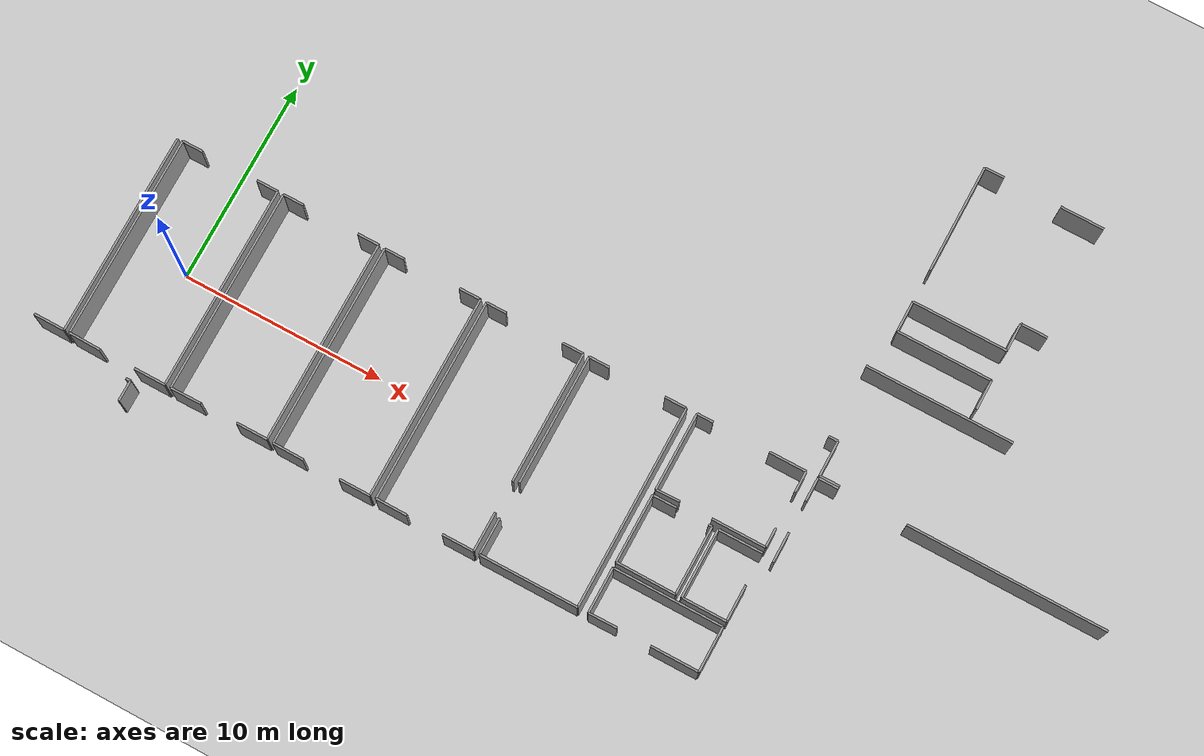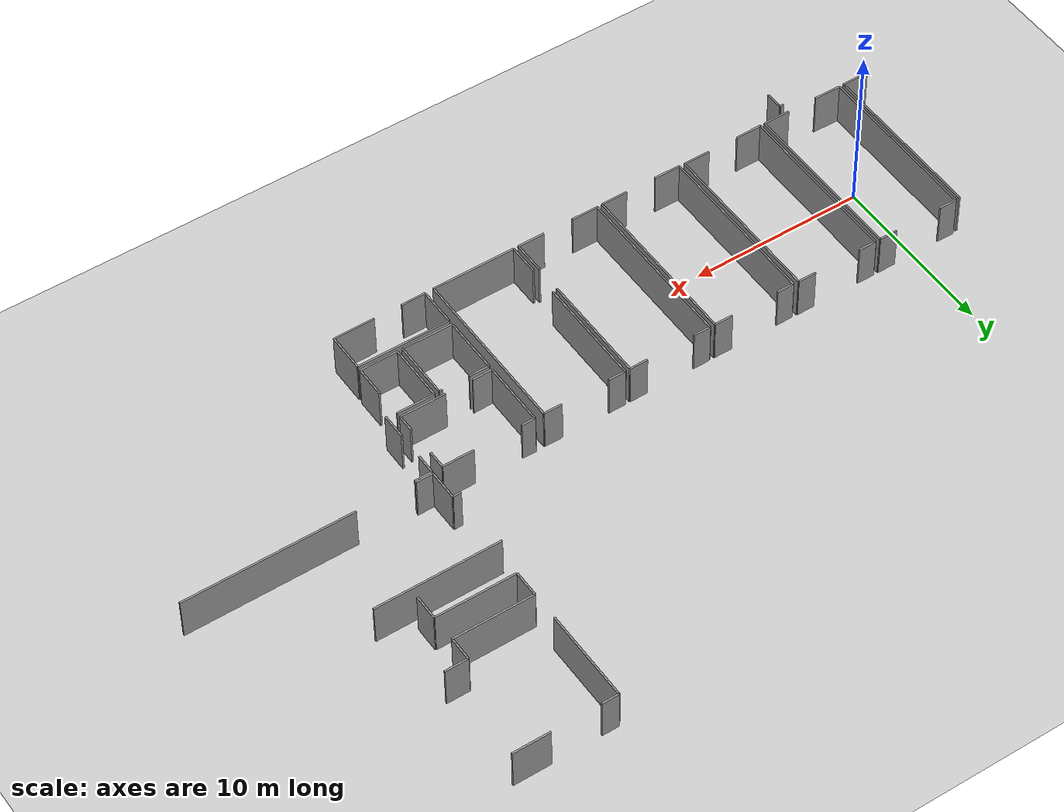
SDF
<sdf version="1.6">
 <world name="default">
  <model name="ground_plane">
   <static>1</static>
   <link name="link">
    <collision name="collision">
     <geometry><plane><normal>0 0 1</normal><size>100 100</size></plane></geometry>
     <surface><friction><ode><mu>100</mu><mu2>50</mu2></ode></friction></surface>
    </collision>
    <visual name="visual">
     <cast_shadows>0</cast_shadows>
     <geometry><plane><normal>0 0 1</normal><size>100 100</size></plane></geometry>
     <material>
      <script><uri>file://media/materials/scripts/gazebo.material</uri><name>Gazebo/Grey</name></script>
     </material>
    </visual>
   </link>
  </model>
  <model name="50055640">
   <static>1</static>
   <link name="Wall_184">
    <collision name="Wall_184_Collision">
     <geometry><box><size>0.228437991776 0.1 2.5</size></box></geometry>
     <pose>0.114218995888 0 1.25 0 0 0</pose>
    </collision>
    <visual name="Wall_184_Visual">
     <pose>0.114218995888 0 1.25 0 0 0</pose>
     <geometry><box><size>0.228437991776 0.1 2.5</size></box></geometry>
     <material>
      <script><uri>file://media/materials/scripts/gazebo.material</uri><name>Gazebo/Grey</name></script>
      <ambient>1 1 1 1</ambient>
     </material>
    </visual>
    <pose>70.9355804863 -26.5519061881 0 0 0 0.0</pose>
   </link>
   <link name="Wall_185">
    <collision name="Wall_185_Collision">
     <geometry><box><size>1.02682877303 0.1 2.5</size></box></geometry>
     <pose>0.513414386517 0 1.25 0 0 0</pose>
    </collision>
    <visual name="Wall_185_Visual">
     <pose>0.513414386517 0 1.25 0 0 0</pose>
     <geometry><box><size>1.02682877303 0.1 2.5</size></box></geometry>
     <material>
      <script><uri>file://media/materials/scripts/gazebo.material</uri><name>Gazebo/Grey</name></script>
      <ambient>1 1 1 1</ambient>
     </material>
    </visual>
    <pose>71.1640184781 -26.5519061881 0 0 0 -1.57079632679</pose>
   </link>
   <link name="Wall_231">
    <collision name="Wall_231_Collision">
     <geometry><box><size>9.96218082136 0.1 2.5</size></box></geometry>
     <pose>4.98109041068 0 1.25 0 0 0</pose>
    </collision>
    <visual name="Wall_231_Visual">
     <pose>4.98109041068 0 1.25 0 0 0</pose>
     <geometry><box><size>9.96218082136 0.1 2.5</size></box></geometry>
     <material>
      <script><uri>file://media/materials/scripts/gazebo.material</uri><name>Gazebo/Grey</name></script>
      <ambient>1 1 1 1</ambient>
     </material>
    </visual>
    <pose>67.4478399919 -16.0047971978 0 0 0 -1.57079632679</pose>
   </link>
   <link name="Wall_232">
    <collision name="Wall_232_Collision">
     <geometry><box><size>1.5417026245 0.1 2.5</size></box></geometry>
     <pose>0.770851312249 0 1.25 0 0 0</pose>
    </collision>
    <visual name="Wall_232_Visual">
     <pose>0.770851312249 0 1.25 0 0 0</pose>
     <geometry><box><size>1.5417026245 0.1 2.5</size></box></geometry>
     <material>
      <script><uri>file://media/materials/scripts/gazebo.material</uri><name>Gazebo/Grey</name></script>
      <ambient>1 1 1 1</ambient>
     </material>
    </visual>
    <pose>67.4478399919 -25.9669780192 0 0 0 3.14159265359</pose>
   </link>
   <link name="Wall_234">
    <collision name="Wall_234_Collision">
     <geometry><box><size>9.9667495812 0.1 2.5</size></box></geometry>
     <pose>4.9833747906 0 1.25 0 0 0</pose>
    </collision>
    <visual name="Wall_234_Visual">
     <pose>4.9833747906 0 1.25 0 0 0</pose>
     <geometry><box><size>9.9667495812 0.1 2.5</size></box></geometry>
     <material>
      <script><uri>file://media/materials/scripts/gazebo.material</uri><name>Gazebo/Grey</name></script>
      <ambient>1 1 1 1</ambient>
     </material>
    </visual>
    <pose>67.7064825626 -25.9598710594 0 0 0 1.57079632679</pose>
   </link>
   <link name="Wall_235">
    <collision name="Wall_235_Collision">
     <geometry><box><size>1.02137164323 0.1 2.5</size></box></geometry>
     <pose>0.510685821615 0 1.25 0 0 0</pose>
    </collision>
    <visual name="Wall_235_Visual">
     <pose>0.510685821615 0 1.25 0 0 0</pose>
     <geometry><box><size>1.02137164323 0.1 2.5</size></box></geometry>
     <material>
      <script><uri>file://media/materials/scripts/gazebo.material</uri><name>Gazebo/Grey</name></script>
      <ambient>1 1 1 1</ambient>
     </material>
    </visual>
    <pose>67.7064825626 -15.9931214782 0 0 0 0.0</pose>
   </link>
   <link name="Wall_236">
    <collision name="Wall_236_Collision">
     <geometry><box><size>1.05931773186 0.1 2.5</size></box></geometry>
     <pose>0.529658865932 0 1.25 0 0 0</pose>
    </collision>
    <visual name="Wall_236_Visual">
     <pose>0.529658865932 0 1.25 0 0 0</pose>
     <geometry><box><size>1.05931773186 0.1 2.5</size></box></geometry>
     <material>
      <script><uri>file://media/materials/scripts/gazebo.material</uri><name>Gazebo/Grey</name></script>
      <ambient>1 1 1 1</ambient>
     </material>
    </visual>
    <pose>71.5163206254 -15.9931214782 0 0 0 0.0</pose>
   </link>
   <link name="Wall_237">
    <collision name="Wall_237_Collision">
     <geometry><box><size>9.99060866034 0.1 2.5</size></box></geometry>
     <pose>4.99530433017 0 1.25 0 0 0</pose>
    </collision>
    <visual name="Wall_237_Visual">
     <pose>4.99530433017 0 1.25 0 0 0</pose>
     <geometry><box><size>9.99060866034 0.1 2.5</size></box></geometry>
     <material>
      <script><uri>file://media/materials/scripts/gazebo.material</uri><name>Gazebo/Grey</name></script>
      <ambient>1 1 1 1</ambient>
     </material>
    </visual>
    <pose>72.5756383573 -15.9931214782 0 0 0 -1.57079632679</pose>
   </link>
   <link name="Wall_238">
    <collision name="Wall_238_Collision">
     <geometry><box><size>1.54233717448 0.1 2.5</size></box></geometry>
     <pose>0.771168587238 0 1.25 0 0 0</pose>
    </collision>
    <visual name="Wall_238_Visual">
     <pose>0.771168587238 0 1.25 0 0 0</pose>
     <geometry><box><size>1.54233717448 0.1 2.5</size></box></geometry>
     <material>
      <script><uri>file://media/materials/scripts/gazebo.material</uri><name>Gazebo/Grey</name></script>
      <ambient>1 1 1 1</ambient>
     </material>
    </visual>
    <pose>72.5756383573 -25.9837301386 0 0 0 3.14159265359</pose>
   </link>
   <link name="Wall_239">
    <collision name="Wall_239_Collision">
     <geometry><box><size>1.5766564998 0.1 2.5</size></box></geometry>
     <pose>0.788328249899 0 1.25 0 0 0</pose>
    </collision>
    <visual name="Wall_239_Visual">
     <pose>0.788328249899 0 1.25 0 0 0</pose>
     <geometry><box><size>1.5766564998 0.1 2.5</size></box></geometry>
     <material>
      <script><uri>file://media/materials/scripts/gazebo.material</uri><name>Gazebo/Grey</name></script>
      <ambient>1 1 1 1</ambient>
     </material>
    </visual>
    <pose>69.2829585258 -25.9837301386 0 0 0 3.12645937005</pose>
   </link>
   <link name="Wall_240">
    <collision name="Wall_240_Collision">
     <geometry><box><size>9.98489771054 0.1 2.5</size></box></geometry>
     <pose>4.99244885527 0 1.25 0 0 0</pose>
    </collision>
    <visual name="Wall_240_Visual">
     <pose>4.99244885527 0 1.25 0 0 0</pose>
     <geometry><box><size>9.98489771054 0.1 2.5</size></box></geometry>
     <material>
      <script><uri>file://media/materials/scripts/gazebo.material</uri><name>Gazebo/Grey</name></script>
      <ambient>1 1 1 1</ambient>
     </material>
    </visual>
    <pose>72.8695619067 -25.9780191888 0 0 0 1.57079632679</pose>
   </link>
   <link name="Wall_241">
    <collision name="Wall_241_Collision">
     <geometry><box><size>1.02099091324 0.1 2.5</size></box></geometry>
     <pose>0.510495456622 0 1.25 0 0 0</pose>
    </collision>
    <visual name="Wall_241_Visual">
     <pose>0.510495456622 0 1.25 0 0 0</pose>
     <geometry><box><size>1.02099091324 0.1 2.5</size></box></geometry>
     <material>
      <script><uri>file://media/materials/scripts/gazebo.material</uri><name>Gazebo/Grey</name></script>
      <ambient>1 1 1 1</ambient>
     </material>
    </visual>
    <pose>72.8695619067 -15.9931214782 0 0 0 0.0</pose>
   </link>
   <link name="Wall_242">
    <collision name="Wall_242_Collision">
     <geometry><box><size>1.05144931215 0.1 2.5</size></box></geometry>
     <pose>0.525724656074 0 1.25 0 0 0</pose>
    </collision>
    <visual name="Wall_242_Visual">
     <pose>0.525724656074 0 1.25 0 0 0</pose>
     <geometry><box><size>1.05144931215 0.1 2.5</size></box></geometry>
     <material>
      <script><uri>file://media/materials/scripts/gazebo.material</uri><name>Gazebo/Grey</name></script>
      <ambient>1 1 1 1</ambient>
     </material>
    </visual>
    <pose>76.6684857099 -15.9931214782 0 0 0 0.0</pose>
   </link>
   <link name="Wall_243">
    <collision name="Wall_243_Collision">
     <geometry><box><size>9.96598812122 0.1 2.5</size></box></geometry>
     <pose>4.98299406061 0 1.25 0 0 0</pose>
    </collision>
    <visual name="Wall_243_Visual">
     <pose>4.98299406061 0 1.25 0 0 0</pose>
     <geometry><box><size>9.96598812122 0.1 2.5</size></box></geometry>
     <material>
      <script><uri>file://media/materials/scripts/gazebo.material</uri><name>Gazebo/Grey</name></script>
      <ambient>1 1 1 1</ambient>
     </material>
    </visual>
    <pose>77.7199350221 -15.9931214782 0 0 0 -1.57079632679</pose>
   </link>
   <link name="Wall_244">
    <collision name="Wall_244_Collision">
     <geometry><box><size>1.53789532464 0.1 2.5</size></box></geometry>
     <pose>0.768947662318 0 1.25 0 0 0</pose>
    </collision>
    <visual name="Wall_244_Visual">
     <pose>0.768947662318 0 1.25 0 0 0</pose>
     <geometry><box><size>1.53789532464 0.1 2.5</size></box></geometry>
     <material>
      <script><uri>file://media/materials/scripts/gazebo.material</uri><name>Gazebo/Grey</name></script>
      <ambient>1 1 1 1</ambient>
     </material>
    </visual>
    <pose>77.7199350221 -25.9591095995 0 0 0 3.14159265359</pose>
   </link>
   <link name="Wall_245">
    <collision name="Wall_245_Collision">
     <geometry><box><size>1.52011863321 0.1 2.5</size></box></geometry>
     <pose>0.760059316603 0 1.25 0 0 0</pose>
    </collision>
    <visual name="Wall_245_Visual">
     <pose>0.760059316603 0 1.25 0 0 0</pose>
     <geometry><box><size>1.52011863321 0.1 2.5</size></box></geometry>
     <material>
      <script><uri>file://media/materials/scripts/gazebo.material</uri><name>Gazebo/Grey</name></script>
      <ambient>1 1 1 1</ambient>
     </material>
    </visual>
    <pose>74.389562922 -25.9591095995 0 0 0 -3.12915278434</pose>
   </link>
   <link name="Wall_246">
    <collision name="Wall_246_Collision">
     <geometry><box><size>9.96192700137 0.1 2.5</size></box></geometry>
     <pose>4.98096350069 0 1.25 0 0 0</pose>
    </collision>
    <visual name="Wall_246_Visual">
     <pose>4.98096350069 0 1.25 0 0 0</pose>
     <geometry><box><size>9.96192700137 0.1 2.5</size></box></geometry>
     <material>
      <script><uri>file://media/materials/scripts/gazebo.material</uri><name>Gazebo/Grey</name></script>
      <ambient>1 1 1 1</ambient>
     </material>
    </visual>
    <pose>78.0342910808 -25.9780191888 0 0 0 1.57079632679</pose>
   </link>
   <link name="Wall_247">
    <collision name="Wall_247_Collision">
     <geometry><box><size>0.982156454642 0.1 2.5</size></box></geometry>
     <pose>0.491078227321 0 1.25 0 0 0</pose>
    </collision>
    <visual name="Wall_247_Visual">
     <pose>0.491078227321 0 1.25 0 0 0</pose>
     <geometry><box><size>0.982156454642 0.1 2.5</size></box></geometry>
     <material>
      <script><uri>file://media/materials/scripts/gazebo.material</uri><name>Gazebo/Grey</name></script>
      <ambient>1 1 1 1</ambient>
     </material>
    </visual>
    <pose>78.0342910808 -16.0160921874 0 0 0 0.0</pose>
   </link>
   <link name="Wall_248">
    <collision name="Wall_248_Collision">
     <geometry><box><size>1.05931773186 0.1 2.5</size></box></geometry>
     <pose>0.529658865932 0 1.25 0 0 0</pose>
    </collision>
    <visual name="Wall_248_Visual">
     <pose>0.529658865932 0 1.25 0 0 0</pose>
     <geometry><box><size>1.05931773186 0.1 2.5</size></box></geometry>
     <material>
      <script><uri>file://media/materials/scripts/gazebo.material</uri><name>Gazebo/Grey</name></script>
      <ambient>1 1 1 1</ambient>
     </material>
    </visual>
    <pose>81.8200162445 -16.0160921874 0 0 0 0.0</pose>
   </link>
   <link name="Wall_249">
    <collision name="Wall_249_Collision">
     <geometry><box><size>9.97715620082 0.1 2.5</size></box></geometry>
     <pose>4.98857810041 0 1.25 0 0 0</pose>
    </collision>
    <visual name="Wall_249_Visual">
     <pose>4.98857810041 0 1.25 0 0 0</pose>
     <geometry><box><size>9.97715620082 0.1 2.5</size></box></geometry>
     <material>
      <script><uri>file://media/materials/scripts/gazebo.material</uri><name>Gazebo/Grey</name></script>
      <ambient>1 1 1 1</ambient>
     </material>
    </visual>
    <pose>82.8793339763 -16.0160921874 0 0 0 -1.57079632679</pose>
   </link>
   <link name="Wall_250">
    <collision name="Wall_250_Collision">
     <geometry><box><size>1.52114320524 0.1 2.5</size></box></geometry>
     <pose>0.760571602619 0 1.25 0 0 0</pose>
    </collision>
    <visual name="Wall_250_Visual">
     <pose>0.760571602619 0 1.25 0 0 0</pose>
     <geometry><box><size>1.52114320524 0.1 2.5</size></box></geometry>
     <material>
      <script><uri>file://media/materials/scripts/gazebo.material</uri><name>Gazebo/Grey</name></script>
      <ambient>1 1 1 1</ambient>
     </material>
    </visual>
    <pose>82.8793339763 -25.9932483882 0 0 0 3.14159265359</pose>
   </link>
   <link name="Wall_251">
    <collision name="Wall_251_Collision">
     <geometry><box><size>1.52781842875 0.1 2.5</size></box></geometry>
     <pose>0.763909214373 0 1.25 0 0 0</pose>
    </collision>
    <visual name="Wall_251_Visual">
     <pose>0.763909214373 0 1.25 0 0 0</pose>
     <geometry><box><size>1.52781842875 0.1 2.5</size></box></geometry>
     <material>
      <script><uri>file://media/materials/scripts/gazebo.material</uri><name>Gazebo/Grey</name></script>
      <ambient>1 1 1 1</ambient>
     </material>
    </visual>
    <pose>79.5620336058 -25.9932483882 0 0 0 3.13162455046</pose>
   </link>
   <link name="Wall_252">
    <collision name="Wall_252_Collision">
     <geometry><box><size>9.95748515153 0.1 2.5</size></box></geometry>
     <pose>4.97874257577 0 1.25 0 0 0</pose>
    </collision>
    <visual name="Wall_252_Visual">
     <pose>4.97874257577 0 1.25 0 0 0</pose>
     <geometry><box><size>9.95748515153 0.1 2.5</size></box></geometry>
     <material>
      <script><uri>file://media/materials/scripts/gazebo.material</uri><name>Gazebo/Grey</name></script>
      <ambient>1 1 1 1</ambient>
     </material>
    </visual>
    <pose>83.1823950454 -25.9702776791 0 0 0 1.57079632679</pose>
   </link>
   <link name="Wall_253">
    <collision name="Wall_253_Collision">
     <geometry><box><size>0.987740494441 0.1 2.5</size></box></geometry>
     <pose>0.493870247221 0 1.25 0 0 0</pose>
    </collision>
    <visual name="Wall_253_Visual">
     <pose>0.493870247221 0 1.25 0 0 0</pose>
     <geometry><box><size>0.987740494441 0.1 2.5</size></box></geometry>
     <material>
      <script><uri>file://media/materials/scripts/gazebo.material</uri><name>Gazebo/Grey</name></script>
      <ambient>1 1 1 1</ambient>
     </material>
    </visual>
    <pose>83.1823950454 -16.0127925275 0 0 0 0.0</pose>
   </link>
   <link name="Wall_254">
    <collision name="Wall_254_Collision">
     <geometry><box><size>1.03736230265 0.1 2.5</size></box></geometry>
     <pose>0.518681151327 0 1.25 0 0 0</pose>
    </collision>
    <visual name="Wall_254_Visual">
     <pose>0.518681151327 0 1.25 0 0 0</pose>
     <geometry><box><size>1.03736230265 0.1 2.5</size></box></geometry>
     <material>
      <script><uri>file://media/materials/scripts/gazebo.material</uri><name>Gazebo/Grey</name></script>
      <ambient>1 1 1 1</ambient>
     </material>
    </visual>
    <pose>86.9951520382 -16.0127925275 0 0 0 0.0</pose>
   </link>
   <link name="Wall_255">
    <collision name="Wall_255_Collision">
     <geometry><box><size>6.46695263719 0.1 2.5</size></box></geometry>
     <pose>3.23347631859 0 1.25 0 0 0</pose>
    </collision>
    <visual name="Wall_255_Visual">
     <pose>3.23347631859 0 1.25 0 0 0</pose>
     <geometry><box><size>6.46695263719 0.1 2.5</size></box></geometry>
     <material>
      <script><uri>file://media/materials/scripts/gazebo.material</uri><name>Gazebo/Grey</name></script>
      <ambient>1 1 1 1</ambient>
     </material>
    </visual>
    <pose>88.0325143408 -16.0127925275 0 0 0 -1.57079632679</pose>
   </link>
   <link name="Wall_256">
    <collision name="Wall_256_Collision">
     <geometry><box><size>1.93131631047 0.1 2.5</size></box></geometry>
     <pose>0.965658155236 0 1.25 0 0 0</pose>
    </collision>
    <visual name="Wall_256_Visual">
     <pose>0.965658155236 0 1.25 0 0 0</pose>
     <geometry><box><size>1.93131631047 0.1 2.5</size></box></geometry>
     <material>
      <script><uri>file://media/materials/scripts/gazebo.material</uri><name>Gazebo/Grey</name></script>
      <ambient>1 1 1 1</ambient>
     </material>
    </visual>
    <pose>88.0325143408 -24.0467028783 0 0 0 -1.57079632679</pose>
   </link>
   <link name="Wall_257">
    <collision name="Wall_257_Collision">
     <geometry><box><size>1.54500228438 0.1 2.5</size></box></geometry>
     <pose>0.77250114219 0 1.25 0 0 0</pose>
    </collision>
    <visual name="Wall_257_Visual">
     <pose>0.77250114219 0 1.25 0 0 0</pose>
     <geometry><box><size>1.54500228438 0.1 2.5</size></box></geometry>
     <material>
      <script><uri>file://media/materials/scripts/gazebo.material</uri><name>Gazebo/Grey</name></script>
      <ambient>1 1 1 1</ambient>
     </material>
    </visual>
    <pose>88.0325143408 -25.9780191888 0 0 0 3.14159265359</pose>
   </link>
   <link name="Wall_258">
    <collision name="Wall_258_Collision">
     <geometry><box><size>1.54832129791 0.1 2.5</size></box></geometry>
     <pose>0.774160648957 0 1.25 0 0 0</pose>
    </collision>
    <visual name="Wall_258_Visual">
     <pose>0.774160648957 0 1.25 0 0 0</pose>
     <geometry><box><size>1.54832129791 0.1 2.5</size></box></geometry>
     <material>
      <script><uri>file://media/materials/scripts/gazebo.material</uri><name>Gazebo/Grey</name></script>
      <ambient>1 1 1 1</ambient>
     </material>
    </visual>
    <pose>84.7306969897 -25.9780191888 0 0 0 3.13659269526</pose>
   </link>
   <link name="Wall_259">
    <collision name="Wall_259_Collision">
     <geometry><box><size>1.80986344484 0.1 2.5</size></box></geometry>
     <pose>0.904931722422 0 1.25 0 0 0</pose>
    </collision>
    <visual name="Wall_259_Visual">
     <pose>0.904931722422 0 1.25 0 0 0</pose>
     <geometry><box><size>1.80986344484 0.1 2.5</size></box></geometry>
     <material>
      <script><uri>file://media/materials/scripts/gazebo.material</uri><name>Gazebo/Grey</name></script>
      <ambient>1 1 1 1</ambient>
     </material>
    </visual>
    <pose>88.3194578405 -25.9780191888 0 0 0 1.57079632679</pose>
   </link>
   <link name="Wall_260">
    <collision name="Wall_260_Collision">
     <geometry><box><size>6.39867505965 0.1 2.5</size></box></geometry>
     <pose>3.19933752982 0 1.25 0 0 0</pose>
    </collision>
    <visual name="Wall_260_Visual">
     <pose>3.19933752982 0 1.25 0 0 0</pose>
     <geometry><box><size>6.39867505965 0.1 2.5</size></box></geometry>
     <material>
      <script><uri>file://media/materials/scripts/gazebo.material</uri><name>Gazebo/Grey</name></script>
      <ambient>1 1 1 1</ambient>
     </material>
    </visual>
    <pose>88.3194578405 -22.4034722575 0 0 0 1.57079632679</pose>
   </link>
   <link name="Wall_261">
    <collision name="Wall_261_Collision">
     <geometry><box><size>0.999416214021 0.1 2.5</size></box></geometry>
     <pose>0.499708107011 0 1.25 0 0 0</pose>
    </collision>
    <visual name="Wall_261_Visual">
     <pose>0.499708107011 0 1.25 0 0 0</pose>
     <geometry><box><size>0.999416214021 0.1 2.5</size></box></geometry>
     <material>
      <script><uri>file://media/materials/scripts/gazebo.material</uri><name>Gazebo/Grey</name></script>
      <ambient>1 1 1 1</ambient>
     </material>
    </visual>
    <pose>88.3194578405 -16.0047971978 0 0 0 0.0</pose>
   </link>
   <link name="Wall_262">
    <collision name="Wall_262_Collision">
     <geometry><box><size>1.05969846185 0.1 2.5</size></box></geometry>
     <pose>0.529849230925 0 1.25 0 0 0</pose>
    </collision>
    <visual name="Wall_262_Visual">
     <pose>0.529849230925 0 1.25 0 0 0</pose>
     <geometry><box><size>1.05969846185 0.1 2.5</size></box></geometry>
     <material>
      <script><uri>file://media/materials/scripts/gazebo.material</uri><name>Gazebo/Grey</name></script>
      <ambient>1 1 1 1</ambient>
     </material>
    </visual>
    <pose>92.0975684045 -16.0047971978 0 0 0 0.0</pose>
   </link>
   <link name="Wall_263">
    <collision name="Wall_263_Collision">
     <geometry><box><size>9.96839941114 0.1 2.5</size></box></geometry>
     <pose>4.98419970557 0 1.25 0 0 0</pose>
    </collision>
    <visual name="Wall_263_Visual">
     <pose>4.98419970557 0 1.25 0 0 0</pose>
     <geometry><box><size>9.96839941114 0.1 2.5</size></box></geometry>
     <material>
      <script><uri>file://media/materials/scripts/gazebo.material</uri><name>Gazebo/Grey</name></script>
      <ambient>1 1 1 1</ambient>
     </material>
    </visual>
    <pose>93.1572668663 -16.0047971978 0 0 0 -1.57079632679</pose>
   </link>
   <link name="Wall_264">
    <collision name="Wall_264_Collision">
     <geometry><box><size>4.83781142954 0.1 2.5</size></box></geometry>
     <pose>2.41890571477 0 1.25 0 0 0</pose>
    </collision>
    <visual name="Wall_264_Visual">
     <pose>2.41890571477 0 1.25 0 0 0</pose>
     <geometry><box><size>4.83781142954 0.1 2.5</size></box></geometry>
     <material>
      <script><uri>file://media/materials/scripts/gazebo.material</uri><name>Gazebo/Grey</name></script>
      <ambient>1 1 1 1</ambient>
     </material>
    </visual>
    <pose>93.1572668663 -25.973196609 0 0 0 -3.14059580187</pose>
   </link>
   <link name="Wall_265">
    <collision name="Wall_265_Collision">
     <geometry><box><size>2.23856540941 0.1 2.5</size></box></geometry>
     <pose>1.11928270471 0 1.25 0 0 0</pose>
    </collision>
    <visual name="Wall_265_Visual">
     <pose>1.11928270471 0 1.25 0 0 0</pose>
     <geometry><box><size>2.23856540941 0.1 2.5</size></box></geometry>
     <material>
      <script><uri>file://media/materials/scripts/gazebo.material</uri><name>Gazebo/Grey</name></script>
      <ambient>1 1 1 1</ambient>
     </material>
    </visual>
    <pose>93.6742981877 -25.9617747094 0 0 0 1.57079632679</pose>
   </link>
   <link name="Wall_266">
    <collision name="Wall_266_Collision">
     <geometry><box><size>5.38237981623 0.1 2.5</size></box></geometry>
     <pose>2.69118990812 0 1.25 0 0 0</pose>
    </collision>
    <visual name="Wall_266_Visual">
     <pose>2.69118990812 0 1.25 0 0 0</pose>
     <geometry><box><size>5.38237981623 0.1 2.5</size></box></geometry>
     <material>
      <script><uri>file://media/materials/scripts/gazebo.material</uri><name>Gazebo/Grey</name></script>
      <ambient>1 1 1 1</ambient>
     </material>
    </visual>
    <pose>93.6742981877 -23.7232093 0 0 0 0.0</pose>
   </link>
   <link name="Wall_267">
    <collision name="Wall_267_Collision">
     <geometry><box><size>2.22232093 0.1 2.5</size></box></geometry>
     <pose>1.111160465 0 1.25 0 0 0</pose>
    </collision>
    <visual name="Wall_267_Visual">
     <pose>1.111160465 0 1.25 0 0 0</pose>
     <geometry><box><size>2.22232093 0.1 2.5</size></box></geometry>
     <material>
      <script><uri>file://media/materials/scripts/gazebo.material</uri><name>Gazebo/Grey</name></script>
      <ambient>1 1 1 1</ambient>
     </material>
    </visual>
    <pose>99.056678004 -23.7232093 0 0 0 -1.57079632679</pose>
   </link>
   <link name="Wall_268">
    <collision name="Wall_268_Collision">
     <geometry><box><size>2.34631199553 0.1 2.5</size></box></geometry>
     <pose>1.17315599777 0 1.25 0 0 0</pose>
    </collision>
    <visual name="Wall_268_Visual">
     <pose>1.17315599777 0 1.25 0 0 0</pose>
     <geometry><box><size>2.34631199553 0.1 2.5</size></box></geometry>
     <material>
      <script><uri>file://media/materials/scripts/gazebo.material</uri><name>Gazebo/Grey</name></script>
      <ambient>1 1 1 1</ambient>
     </material>
    </visual>
    <pose>99.056678004 -25.94553023 0 0 0 3.14159265359</pose>
   </link>
   <link name="Wall_269">
    <collision name="Wall_269_Collision">
     <geometry><box><size>1.39965769981 0.1 2.5</size></box></geometry>
     <pose>0.699828849904 0 1.25 0 0 0</pose>
    </collision>
    <visual name="Wall_269_Visual">
     <pose>0.699828849904 0 1.25 0 0 0</pose>
     <geometry><box><size>1.39965769981 0.1 2.5</size></box></geometry>
     <material>
      <script><uri>file://media/materials/scripts/gazebo.material</uri><name>Gazebo/Grey</name></script>
      <ambient>1 1 1 1</ambient>
     </material>
    </visual>
    <pose>95.0738616173 -25.94553023 0 0 0 -3.12998635576</pose>
   </link>
   <link name="Wall_313">
    <collision name="Wall_313_Collision">
     <geometry><box><size>1.47647088685 0.1 2.5</size></box></geometry>
     <pose>0.738235443424 0 1.25 0 0 0</pose>
    </collision>
    <visual name="Wall_313_Visual">
     <pose>0.738235443424 0 1.25 0 0 0</pose>
     <geometry><box><size>1.47647088685 0.1 2.5</size></box></geometry>
     <material>
      <script><uri>file://media/materials/scripts/gazebo.material</uri><name>Gazebo/Grey</name></script>
      <ambient>1 1 1 1</ambient>
     </material>
    </visual>
    <pose>99.6493476826 -20.2103406264 0 0 0 1.57079632679</pose>
   </link>
   <link name="Wall_314">
    <collision name="Wall_314_Collision">
     <geometry><box><size>1.1609726382 0.1 2.5</size></box></geometry>
     <pose>0.580486319102 0 1.25 0 0 0</pose>
    </collision>
    <visual name="Wall_314_Visual">
     <pose>0.580486319102 0 1.25 0 0 0</pose>
     <geometry><box><size>1.1609726382 0.1 2.5</size></box></geometry>
     <material>
      <script><uri>file://media/materials/scripts/gazebo.material</uri><name>Gazebo/Grey</name></script>
      <ambient>1 1 1 1</ambient>
     </material>
    </visual>
    <pose>99.6493476826 -17.1501599066 0 0 0 1.57079632679</pose>
   </link>
   <link name="Wall_315">
    <collision name="Wall_315_Collision">
     <geometry><box><size>0.995228184172 0.1 2.5</size></box></geometry>
     <pose>0.497614092086 0 1.25 0 0 0</pose>
    </collision>
    <visual name="Wall_315_Visual">
     <pose>0.497614092086 0 1.25 0 0 0</pose>
     <geometry><box><size>0.995228184172 0.1 2.5</size></box></geometry>
     <material>
      <script><uri>file://media/materials/scripts/gazebo.material</uri><name>Gazebo/Grey</name></script>
      <ambient>1 1 1 1</ambient>
     </material>
    </visual>
    <pose>99.6493476826 -15.9891872684 0 0 0 0.0</pose>
   </link>
   <link name="Wall_316">
    <collision name="Wall_316_Collision">
     <geometry><box><size>9.75036803899 0.1 2.5</size></box></geometry>
     <pose>4.87518401949 0 1.25 0 0 0</pose>
    </collision>
    <visual name="Wall_316_Visual">
     <pose>4.87518401949 0 1.25 0 0 0</pose>
     <geometry><box><size>9.75036803899 0.1 2.5</size></box></geometry>
     <material>
      <script><uri>file://media/materials/scripts/gazebo.material</uri><name>Gazebo/Grey</name></script>
      <ambient>1 1 1 1</ambient>
     </material>
    </visual>
    <pose>103.984339307 -15.9891872684 0 0 0 0.0</pose>
   </link>
   <link name="Wall_352">
    <collision name="Wall_352_Collision">
     <geometry><box><size>3.38278592822 0.1 2.5</size></box></geometry>
     <pose>1.69139296411 0 1.25 0 0 0</pose>
    </collision>
    <visual name="Wall_352_Visual">
     <pose>1.69139296411 0 1.25 0 0 0</pose>
     <geometry><box><size>3.38278592822 0.1 2.5</size></box></geometry>
     <material>
      <script><uri>file://media/materials/scripts/gazebo.material</uri><name>Gazebo/Grey</name></script>
      <ambient>1 1 1 1</ambient>
     </material>
    </visual>
    <pose>96.8950200518 -23.4544139296 0 0 0 1.57079632679</pose>
   </link>
   <link name="Wall_353">
    <collision name="Wall_353_Collision">
     <geometry><box><size>2.18475557135 0.1 2.5</size></box></geometry>
     <pose>1.09237778567 0 1.25 0 0 0</pose>
    </collision>
    <visual name="Wall_353_Visual">
     <pose>1.09237778567 0 1.25 0 0 0</pose>
     <geometry><box><size>2.18475557135 0.1 2.5</size></box></geometry>
     <material>
      <script><uri>file://media/materials/scripts/gazebo.material</uri><name>Gazebo/Grey</name></script>
      <ambient>1 1 1 1</ambient>
     </material>
    </visual>
    <pose>96.8950200518 -20.0716280014 0 0 0 0.0</pose>
   </link>
   <link name="Wall_354">
    <collision name="Wall_354_Collision">
     <geometry><box><size>1.78486217574 0.1 2.5</size></box></geometry>
     <pose>0.892431087872 0 1.25 0 0 0</pose>
    </collision>
    <visual name="Wall_354_Visual">
     <pose>0.892431087872 0 1.25 0 0 0</pose>
     <geometry><box><size>1.78486217574 0.1 2.5</size></box></geometry>
     <material>
      <script><uri>file://media/materials/scripts/gazebo.material</uri><name>Gazebo/Grey</name></script>
      <ambient>1 1 1 1</ambient>
     </material>
    </visual>
    <pose>99.0797756231 -21.6644753541 0 0 0 -1.57079632679</pose>
   </link>
   <link name="Wall_355">
    <collision name="Wall_355_Collision">
     <geometry><box><size>2.18476146899 0.1 2.5</size></box></geometry>
     <pose>1.09238073449 0 1.25 0 0 0</pose>
    </collision>
    <visual name="Wall_355_Visual">
     <pose>1.09238073449 0 1.25 0 0 0</pose>
     <geometry><box><size>2.18476146899 0.1 2.5</size></box></geometry>
     <material>
      <script><uri>file://media/materials/scripts/gazebo.material</uri><name>Gazebo/Grey</name></script>
      <ambient>1 1 1 1</ambient>
     </material>
    </visual>
    <pose>99.0797756231 -23.4493375298 0 0 0 -3.13926910273</pose>
   </link>
   <link name="Wall_356">
    <collision name="Wall_356_Collision">
     <geometry><box><size>3.82697091223 0.1 2.5</size></box></geometry>
     <pose>1.91348545611 0 1.25 0 0 0</pose>
    </collision>
    <visual name="Wall_356_Visual">
     <pose>1.91348545611 0 1.25 0 0 0</pose>
     <geometry><box><size>3.82697091223 0.1 2.5</size></box></geometry>
     <material>
      <script><uri>file://media/materials/scripts/gazebo.material</uri><name>Gazebo/Grey</name></script>
      <ambient>1 1 1 1</ambient>
     </material>
    </visual>
    <pose>93.6828011574 -19.8200923905 0 0 0 1.57079632679</pose>
   </link>
   <link name="Wall_357">
    <collision name="Wall_357_Collision">
     <geometry><box><size>0.790903091527 0.1 2.5</size></box></geometry>
     <pose>0.395451545764 0 1.25 0 0 0</pose>
    </collision>
    <visual name="Wall_357_Visual">
     <pose>0.395451545764 0 1.25 0 0 0</pose>
     <geometry><box><size>0.790903091527 0.1 2.5</size></box></geometry>
     <material>
      <script><uri>file://media/materials/scripts/gazebo.material</uri><name>Gazebo/Grey</name></script>
      <ambient>1 1 1 1</ambient>
     </material>
    </visual>
    <pose>93.6828011574 -15.9931214782 0 0 0 0.0</pose>
   </link>
   <link name="Wall_358">
    <collision name="Wall_358_Collision">
     <geometry><box><size>1.81087872481 0.1 2.5</size></box></geometry>
     <pose>0.905439362404 0 1.25 0 0 0</pose>
    </collision>
    <visual name="Wall_358_Visual">
     <pose>0.905439362404 0 1.25 0 0 0</pose>
     <geometry><box><size>1.81087872481 0.1 2.5</size></box></geometry>
     <material>
      <script><uri>file://media/materials/scripts/gazebo.material</uri><name>Gazebo/Grey</name></script>
      <ambient>1 1 1 1</ambient>
     </material>
    </visual>
    <pose>97.249987309 -15.9931214782 0 0 0 0.0</pose>
   </link>
   <link name="Wall_359">
    <collision name="Wall_359_Collision">
     <geometry><box><size>1.04345398244 0.1 2.5</size></box></geometry>
     <pose>0.521726991218 0 1.25 0 0 0</pose>
    </collision>
    <visual name="Wall_359_Visual">
     <pose>0.521726991218 0 1.25 0 0 0</pose>
     <geometry><box><size>1.04345398244 0.1 2.5</size></box></geometry>
     <material>
      <script><uri>file://media/materials/scripts/gazebo.material</uri><name>Gazebo/Grey</name></script>
      <ambient>1 1 1 1</ambient>
     </material>
    </visual>
    <pose>99.0608660338 -15.9931214782 0 0 0 -1.57079632679</pose>
   </link>
   <link name="Wall_360">
    <collision name="Wall_360_Collision">
     <geometry><box><size>0.959566475456 0.1 2.5</size></box></geometry>
     <pose>0.479783237728 0 1.25 0 0 0</pose>
    </collision>
    <visual name="Wall_360_Visual">
     <pose>0.479783237728 0 1.25 0 0 0</pose>
     <geometry><box><size>0.959566475456 0.1 2.5</size></box></geometry>
     <material>
      <script><uri>file://media/materials/scripts/gazebo.material</uri><name>Gazebo/Grey</name></script>
      <ambient>1 1 1 1</ambient>
     </material>
    </visual>
    <pose>99.0608660338 -18.833620996 0 0 0 -1.57079632679</pose>
   </link>
   <link name="Wall_361">
    <collision name="Wall_361_Collision">
     <geometry><box><size>2.62868673537 0.1 2.5</size></box></geometry>
     <pose>1.31434336768 0 1.25 0 0 0</pose>
    </collision>
    <visual name="Wall_361_Visual">
     <pose>1.31434336768 0 1.25 0 0 0</pose>
     <geometry><box><size>2.62868673537 0.1 2.5</size></box></geometry>
     <material>
      <script><uri>file://media/materials/scripts/gazebo.material</uri><name>Gazebo/Grey</name></script>
      <ambient>1 1 1 1</ambient>
     </material>
    </visual>
    <pose>99.0608660338 -19.7931874714 0 0 0 3.14159265359</pose>
   </link>
   <link name="Wall_362">
    <collision name="Wall_362_Collision">
     <geometry><box><size>1.17016568312 0.1 2.5</size></box></geometry>
     <pose>0.585082841561 0 1.25 0 0 0</pose>
    </collision>
    <visual name="Wall_362_Visual">
     <pose>0.585082841561 0 1.25 0 0 0</pose>
     <geometry><box><size>1.17016568312 0.1 2.5</size></box></geometry>
     <material>
      <script><uri>file://media/materials/scripts/gazebo.material</uri><name>Gazebo/Grey</name></script>
      <ambient>1 1 1 1</ambient>
     </material>
    </visual>
    <pose>94.8526574953 -19.7931874714 0 0 0 -3.11859822593</pose>
   </link>
   <link name="Wall_363">
    <collision name="Wall_363_Collision">
     <geometry><box><size>3.35740392913 0.1 2.5</size></box></geometry>
     <pose>1.67870196457 0 1.25 0 0 0</pose>
    </collision>
    <visual name="Wall_363_Visual">
     <pose>1.67870196457 0 1.25 0 0 0</pose>
     <geometry><box><size>3.35740392913 0.1 2.5</size></box></geometry>
     <material>
      <script><uri>file://media/materials/scripts/gazebo.material</uri><name>Gazebo/Grey</name></script>
      <ambient>1 1 1 1</ambient>
     </material>
    </visual>
    <pose>93.6764556576 -23.4484491599 0 0 0 1.57079632679</pose>
   </link>
   <link name="Wall_364">
    <collision name="Wall_364_Collision">
     <geometry><box><size>1.17747093761 0.1 2.5</size></box></geometry>
     <pose>0.588735468806 0 1.25 0 0 0</pose>
    </collision>
    <visual name="Wall_364_Visual">
     <pose>0.588735468806 0 1.25 0 0 0</pose>
     <geometry><box><size>1.17747093761 0.1 2.5</size></box></geometry>
     <material>
      <script><uri>file://media/materials/scripts/gazebo.material</uri><name>Gazebo/Grey</name></script>
      <ambient>1 1 1 1</ambient>
     </material>
    </visual>
    <pose>93.6764556576 -20.0910452307 0 0 0 0.0</pose>
   </link>
   <link name="Wall_365">
    <collision name="Wall_365_Collision">
     <geometry><box><size>0.183638763389 0.1 2.5</size></box></geometry>
     <pose>0.0918193816945 0 1.25 0 0 0</pose>
    </collision>
    <visual name="Wall_365_Visual">
     <pose>0.0918193816945 0 1.25 0 0 0</pose>
     <geometry><box><size>0.183638763389 0.1 2.5</size></box></geometry>
     <material>
      <script><uri>file://media/materials/scripts/gazebo.material</uri><name>Gazebo/Grey</name></script>
      <ambient>1 1 1 1</ambient>
     </material>
    </visual>
    <pose>96.4199959389 -20.0910452307 0 0 0 0.0</pose>
   </link>
   <link name="Wall_366">
    <collision name="Wall_366_Collision">
     <geometry><box><size>3.37758261841 0.1 2.5</size></box></geometry>
     <pose>1.6887913092 0 1.25 0 0 0</pose>
    </collision>
    <visual name="Wall_366_Visual">
     <pose>1.6887913092 0 1.25 0 0 0</pose>
     <geometry><box><size>3.37758261841 0.1 2.5</size></box></geometry>
     <material>
      <script><uri>file://media/materials/scripts/gazebo.material</uri><name>Gazebo/Grey</name></script>
      <ambient>1 1 1 1</ambient>
     </material>
    </visual>
    <pose>96.6036347023 -20.0910452307 0 0 0 -1.57079632679</pose>
   </link>
   <link name="Wall_367">
    <collision name="Wall_367_Collision">
     <geometry><box><size>2.92724859531 0.1 2.5</size></box></geometry>
     <pose>1.46362429766 0 1.25 0 0 0</pose>
    </collision>
    <visual name="Wall_367_Visual">
     <pose>1.46362429766 0 1.25 0 0 0</pose>
     <geometry><box><size>2.92724859531 0.1 2.5</size></box></geometry>
     <material>
      <script><uri>file://media/materials/scripts/gazebo.material</uri><name>Gazebo/Grey</name></script>
      <ambient>1 1 1 1</ambient>
     </material>
    </visual>
    <pose>96.6036347023 -23.4686278491 0 0 0 3.13469920111</pose>
   </link>
   <link name="Wall_368">
    <collision name="Wall_368_Collision">
     <geometry><box><size>1.75021574699 0.1 2.5</size></box></geometry>
     <pose>0.875107873496 0 1.25 0 0 0</pose>
    </collision>
    <visual name="Wall_368_Visual">
     <pose>0.875107873496 0 1.25 0 0 0</pose>
     <geometry><box><size>1.75021574699 0.1 2.5</size></box></geometry>
     <material>
      <script><uri>file://media/materials/scripts/gazebo.material</uri><name>Gazebo/Grey</name></script>
      <ambient>1 1 1 1</ambient>
     </material>
    </visual>
    <pose>99.665719072 -15.8937509518 0 0 0 1.57079632679</pose>
   </link>
   <link name="Wall_369">
    <collision name="Wall_369_Collision">
     <geometry><box><size>0.471851363013 0.1 2.5</size></box></geometry>
     <pose>0.235925681507 0 1.25 0 0 0</pose>
    </collision>
    <visual name="Wall_369_Visual">
     <pose>0.235925681507 0 1.25 0 0 0</pose>
     <geometry><box><size>0.471851363013 0.1 2.5</size></box></geometry>
     <material>
      <script><uri>file://media/materials/scripts/gazebo.material</uri><name>Gazebo/Grey</name></script>
      <ambient>1 1 1 1</ambient>
     </material>
    </visual>
    <pose>99.665719072 -14.1435352048 0 0 0 3.14159265359</pose>
   </link>
   <link name="Wall_370">
    <collision name="Wall_370_Collision">
     <geometry><box><size>7.2279049698 0.1 2.5</size></box></geometry>
     <pose>3.6139524849 0 1.25 0 0 0</pose>
    </collision>
    <visual name="Wall_370_Visual">
     <pose>3.6139524849 0 1.25 0 0 0</pose>
     <geometry><box><size>7.2279049698 0.1 2.5</size></box></geometry>
     <material>
      <script><uri>file://media/materials/scripts/gazebo.material</uri><name>Gazebo/Grey</name></script>
      <ambient>1 1 1 1</ambient>
     </material>
    </visual>
    <pose>99.193867709 -10.5616274938 0 0 0 0.0</pose>
   </link>
   <link name="Wall_393">
    <collision name="Wall_393_Collision">
     <geometry><box><size>0.988845565136 0.1 2.5</size></box></geometry>
     <pose>0.494422782568 0 1.25 0 0 0</pose>
    </collision>
    <visual name="Wall_393_Visual">
     <pose>0.494422782568 0 1.25 0 0 0</pose>
     <geometry><box><size>0.988845565136 0.1 2.5</size></box></geometry>
     <material>
      <script><uri>file://media/materials/scripts/gazebo.material</uri><name>Gazebo/Grey</name></script>
      <ambient>1 1 1 1</ambient>
     </material>
    </visual>
    <pose>100.654474846 -15.8804254023 0 0 0 -3.12811638051</pose>
   </link>
   <link name="Wall_394">
    <collision name="Wall_394_Collision">
     <geometry><box><size>1.45667292756 0.1 2.5</size></box></geometry>
     <pose>0.72833646378 0 1.25 0 0 0</pose>
    </collision>
    <visual name="Wall_394_Visual">
     <pose>0.72833646378 0 1.25 0 0 0</pose>
     <geometry><box><size>1.45667292756 0.1 2.5</size></box></geometry>
     <material>
      <script><uri>file://media/materials/scripts/gazebo.material</uri><name>Gazebo/Grey</name></script>
      <ambient>1 1 1 1</ambient>
     </material>
    </visual>
    <pose>104.332199604 -9.98735976446 0 0 0 1.57079632679</pose>
   </link>
   <link name="Wall_395">
    <collision name="Wall_395_Collision">
     <geometry><box><size>4.64604802274 0.1 2.5</size></box></geometry>
     <pose>2.32302401137 0 1.25 0 0 0</pose>
    </collision>
    <visual name="Wall_395_Visual">
     <pose>2.32302401137 0 1.25 0 0 0</pose>
     <geometry><box><size>4.64604802274 0.1 2.5</size></box></geometry>
     <material>
      <script><uri>file://media/materials/scripts/gazebo.material</uri><name>Gazebo/Grey</name></script>
      <ambient>1 1 1 1</ambient>
     </material>
    </visual>
    <pose>104.332199604 -8.5306868369 0 0 0 3.14159265359</pose>
   </link>
   <link name="Wall_396">
    <collision name="Wall_396_Collision">
     <geometry><box><size>1.52291994517 0.1 2.5</size></box></geometry>
     <pose>0.761459972587 0 1.25 0 0 0</pose>
    </collision>
    <visual name="Wall_396_Visual">
     <pose>0.761459972587 0 1.25 0 0 0</pose>
     <geometry><box><size>1.52291994517 0.1 2.5</size></box></geometry>
     <material>
      <script><uri>file://media/materials/scripts/gazebo.material</uri><name>Gazebo/Grey</name></script>
      <ambient>1 1 1 1</ambient>
     </material>
    </visual>
    <pose>99.6861515813 -8.5306868369 0 0 0 1.57079632679</pose>
   </link>
   <link name="Wall_397">
    <collision name="Wall_397_Collision">
     <geometry><box><size>4.6277729834 0.1 2.5</size></box></geometry>
     <pose>2.3138864917 0 1.25 0 0 0</pose>
    </collision>
    <visual name="Wall_397_Visual">
     <pose>2.3138864917 0 1.25 0 0 0</pose>
     <geometry><box><size>4.6277729834 0.1 2.5</size></box></geometry>
     <material>
      <script><uri>file://media/materials/scripts/gazebo.material</uri><name>Gazebo/Grey</name></script>
      <ambient>1 1 1 1</ambient>
     </material>
    </visual>
    <pose>99.6861515813 -7.00776689172 0 0 0 0.0</pose>
   </link>
   <link name="Wall_398">
    <collision name="Wall_398_Collision">
     <geometry><box><size>1.37519671049 0.1 2.5</size></box></geometry>
     <pose>0.687598355246 0 1.25 0 0 0</pose>
    </collision>
    <visual name="Wall_398_Visual">
     <pose>0.687598355246 0 1.25 0 0 0</pose>
     <geometry><box><size>1.37519671049 0.1 2.5</size></box></geometry>
     <material>
      <script><uri>file://media/materials/scripts/gazebo.material</uri><name>Gazebo/Grey</name></script>
      <ambient>1 1 1 1</ambient>
     </material>
    </visual>
    <pose>104.313924565 -7.00776689172 0 0 0 1.57079632679</pose>
   </link>
   <link name="Wall_399">
    <collision name="Wall_399_Collision">
     <geometry><box><size>1.31846794254 0.1 2.5</size></box></geometry>
     <pose>0.659233971268 0 1.25 0 0 0</pose>
    </collision>
    <visual name="Wall_399_Visual">
     <pose>0.659233971268 0 1.25 0 0 0</pose>
     <geometry><box><size>1.31846794254 0.1 2.5</size></box></geometry>
     <material>
      <script><uri>file://media/materials/scripts/gazebo.material</uri><name>Gazebo/Grey</name></script>
      <ambient>1 1 1 1</ambient>
     </material>
    </visual>
    <pose>104.313924565 -5.63257018123 0 0 0 0.0</pose>
   </link>
   <link name="Wall_403">
    <collision name="Wall_403_Collision">
     <geometry><box><size>5.34940859942 0.1 2.5</size></box></geometry>
     <pose>2.67470429971 0 1.25 0 0 0</pose>
    </collision>
    <visual name="Wall_403_Visual">
     <pose>2.67470429971 0 1.25 0 0 0</pose>
     <geometry><box><size>5.34940859942 0.1 2.5</size></box></geometry>
     <material>
      <script><uri>file://media/materials/scripts/gazebo.material</uri><name>Gazebo/Grey</name></script>
      <ambient>1 1 1 1</ambient>
     </material>
    </visual>
    <pose>99.6971927509 -5.37443525052 0 0 0 1.57079632679</pose>
   </link>
   <link name="Wall_404">
    <collision name="Wall_404_Collision">
     <geometry><box><size>0.970226915072 0.1 2.5</size></box></geometry>
     <pose>0.485113457536 0 1.25 0 0 0</pose>
    </collision>
    <visual name="Wall_404_Visual">
     <pose>0.485113457536 0 1.25 0 0 0</pose>
     <geometry><box><size>0.970226915072 0.1 2.5</size></box></geometry>
     <material>
      <script><uri>file://media/materials/scripts/gazebo.material</uri><name>Gazebo/Grey</name></script>
      <ambient>1 1 1 1</ambient>
     </material>
    </visual>
    <pose>99.6971927509 -0.025026651099 0 0 0 0.0</pose>
   </link>
   <link name="Wall_405">
    <collision name="Wall_405_Collision">
     <geometry><box><size>2.13627595309 0.1 2.5</size></box></geometry>
     <pose>1.06813797655 0 1.25 0 0 0</pose>
    </collision>
    <visual name="Wall_405_Visual">
     <pose>1.06813797655 0 1.25 0 0 0</pose>
     <geometry><box><size>2.13627595309 0.1 2.5</size></box></geometry>
     <material>
      <script><uri>file://media/materials/scripts/gazebo.material</uri><name>Gazebo/Grey</name></script>
      <ambient>1 1 1 1</ambient>
     </material>
    </visual>
    <pose>103.479491345 -0.025026651099 0 0 0 0.0</pose>
   </link>
   <pose>-70.4 20.8977283111 0 0 0 0</pose>
  </model>
 </world>
</sdf>
